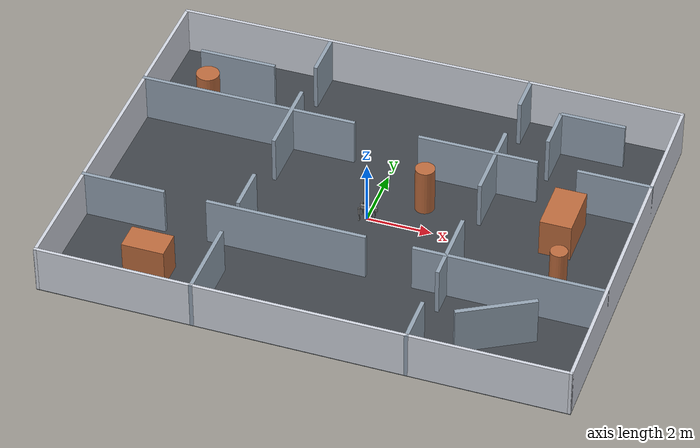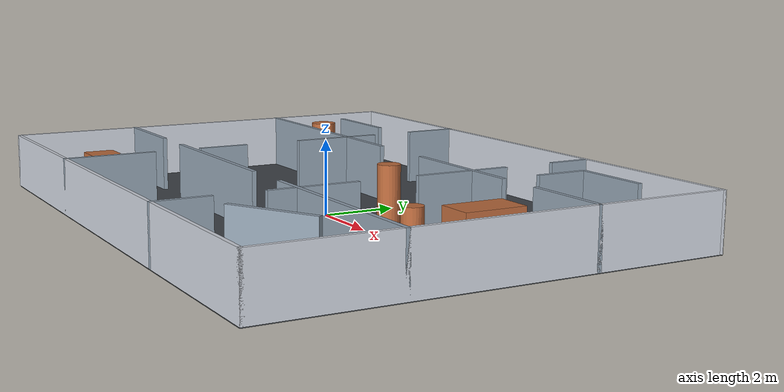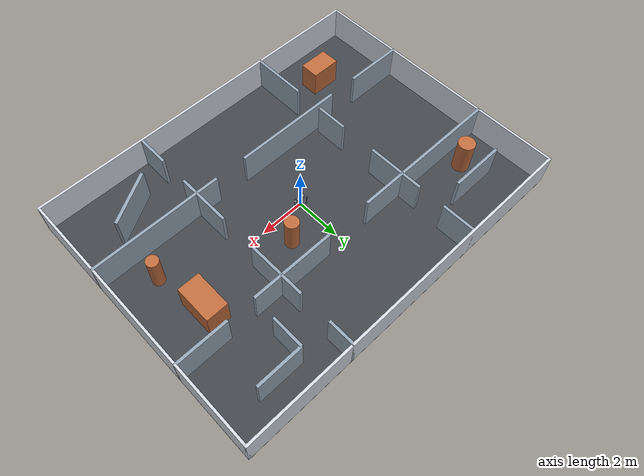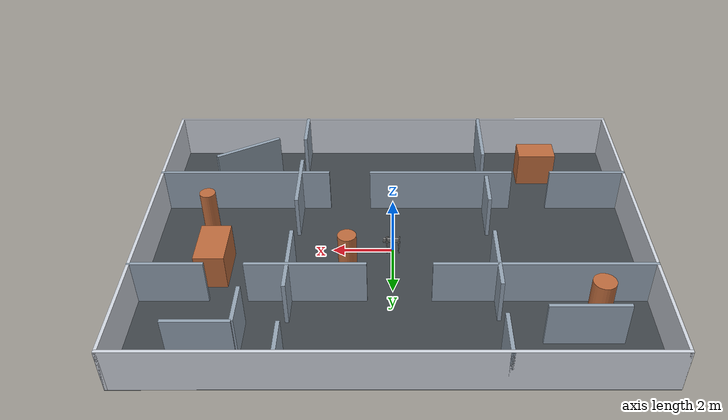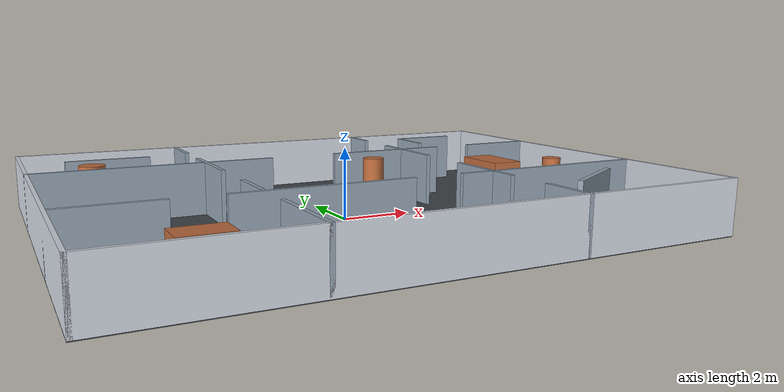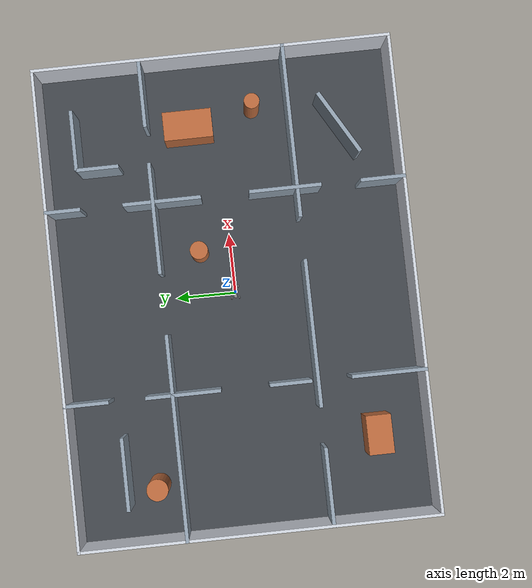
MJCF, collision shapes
<mujoco model="go2_nav2_complex_indoor">
  <!-- Geometry-equivalent snapshot of the world used for this manual SLAM checkpoint. -->
  <include file="/home/bi-agx1/go2_projects/shared/dependencies/unitree_mujoco/unitree_robots/go2/go2.xml" />
  <compiler meshdir="/home/bi-agx1/go2_projects/shared/dependencies/unitree_mujoco/unitree_robots/go2/assets" />

  <statistic center="0 0 0.3" extent="10" />
  <visual>
    <headlight diffuse="0.65 0.65 0.65" ambient="0.35 0.35 0.35" specular="0 0 0" />
    <global azimuth="-90" elevation="-70" />
  </visual>
  <asset>
    <material name="complex_floor" rgba="0.25 0.27 0.29 1" />
    <material name="complex_outer_wall" rgba="0.82 0.84 0.88 1" />
    <material name="complex_partition" rgba="0.58 0.64 0.70 1" />
    <material name="complex_landmark" rgba="0.74 0.42 0.24 1" />
  </asset>
  <worldbody>
    <light name="complex_ceiling_light" pos="0 0 8" dir="0 0 -1" directional="true" />
    <geom name="complex_floor_16x12" type="plane" size="8 6 0.1" material="complex_floor" />
    <geom name="outer_north" type="box" pos="0 5.95 0.75" size="8 0.05 0.75" material="complex_outer_wall" />
    <geom name="outer_south" type="box" pos="0 -5.95 0.75" size="8 0.05 0.75" material="complex_outer_wall" />
    <geom name="outer_east" type="box" pos="7.95 0 0.75" size="0.05 6 0.75" material="complex_outer_wall" />
    <geom name="outer_west" type="box" pos="-7.95 0 0.75" size="0.05 6 0.75" material="complex_outer_wall" />
    <geom name="north_band_west" type="box" pos="-4.60 2.40 0.75" size="3.40 0.06 0.75" material="complex_partition" />
    <geom name="north_band_mid" type="box" pos="2.65 2.40 0.75" size="1.85 0.06 0.75" material="complex_partition" />
    <geom name="north_band_east" type="box" pos="6.85 2.40 0.75" size="1.15 0.06 0.75" material="complex_partition" />
    <geom name="south_band_west" type="box" pos="-6.70 -2.40 0.75" size="1.30 0.06 0.75" material="complex_partition" />
    <geom name="south_band_mid" type="box" pos="-1.65 -2.40 0.75" size="2.45 0.06 0.75" material="complex_partition" />
    <geom name="south_band_east" type="box" pos="5.10 -2.40 0.75" size="2.90 0.06 0.75" material="complex_partition" />
    <geom name="west_spine_south" type="box" pos="-3.20 -4.75 0.75" size="0.06 1.25 0.75" material="complex_partition" />
    <geom name="west_spine_lower" type="box" pos="-3.20 -1.50 0.75" size="0.06 0.70 0.75" material="complex_partition" />
    <geom name="west_spine_upper" type="box" pos="-3.20 2.05 0.75" size="0.06 1.25 0.75" material="complex_partition" />
    <geom name="west_spine_north" type="box" pos="-3.20 5.25 0.75" size="0.06 0.75 0.75" material="complex_partition" />
    <geom name="east_spine_south" type="box" pos="3.20 -5.25 0.75" size="0.06 0.75 0.75" material="complex_partition" />
    <geom name="east_spine_lower" type="box" pos="3.20 -2.00 0.75" size="0.06 1.20 0.75" material="complex_partition" />
    <geom name="east_spine_upper" type="box" pos="3.20 1.60 0.75" size="0.06 0.80 0.75" material="complex_partition" />
    <geom name="east_spine_room_lower" type="box" pos="3.20 2.90 0.75" size="0.06 0.50 0.75" material="complex_partition" />
    <geom name="east_spine_room_upper" type="box" pos="3.20 5.40 0.75" size="0.06 0.60 0.75" material="complex_partition" />
    <geom name="west_north_room_wall" type="box" pos="-5.60 4.20 0.75" size="1.20 0.06 0.75" material="complex_partition" />
    <geom name="east_north_alcove_back" type="box" pos="5.50 4.80 0.75" size="1.00 0.06 0.75" material="complex_partition" />
    <geom name="east_north_alcove_side" type="box" pos="4.50 4.10 0.75" size="0.06 0.70 0.75" material="complex_partition" />
    <geom name="east_south_angled_wall" type="box" pos="5.20 -4.00 0.75" euler="0 0 0.523599" size="1.20 0.07 0.75" material="complex_partition" />
    <geom name="pillar_central" type="cylinder" pos="1.45 1.05 0.75" size="0.30 0.75" material="complex_landmark" />
    <geom name="pillar_north_west" type="cylinder" pos="-6.20 3.20 0.75" size="0.36 0.75" material="complex_landmark" />
    <geom name="pillar_south_east" type="cylinder" pos="6.20 -1.20 0.75" size="0.26 0.75" material="complex_landmark" />
    <geom name="island_south_west" type="box" pos="-5.20 -4.25 0.60" size="0.65 0.42 0.60" material="complex_landmark" />
    <geom name="island_north_east" type="box" pos="5.70 1.00 0.60" size="0.48 0.82 0.60" material="complex_landmark" />
  </worldbody>
</mujoco>

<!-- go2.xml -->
<mujoco model="go2">
  <compiler angle="radian" meshdir="assets" autolimits="true" />

  <option cone="elliptic" impratio="100" />

  <default>
    <default class="go2">
      <geom friction="0.4" margin="0.001" condim="1"/>
      <joint axis="0 1 0" damping="0.1" armature="0.01" frictionloss="0.2"/>
      <motor ctrlrange="-23.7 23.7"/>
      <default class="abduction">
        <joint axis="1 0 0" range="-1.0472 1.0472"/>
      </default>
      <default class="hip">
        <default class="front_hip">
          <joint range="-1.5708 3.4907"/>
        </default>
        <default class="back_hip">
          <joint range="-0.5236 4.5379"/>
        </default>
      </default>
      <default class="knee">
        <joint range="-2.7227 -0.83776"/>
        <motor ctrlrange="-45.43 45.43"/>
      </default>
      <default class="visual">
        <geom type="mesh" contype="0" conaffinity="0" group="2"/>
      </default>
      <default class="collision">
        <geom group="3"/>
        <default class="foot">
          <geom size="0.022" pos="-0.002 0 -0.213" priority="1" condim="6"
            friction="0.4 0.02 0.01"/>
        </default>
      </default>
    </default>
  </default>

  <asset>
    <material name="metal" rgba=".9 .95 .95 1" />
    <material name="black" rgba="0 0 0 1" />
    <material name="white" rgba="1 1 1 1" />
    <material name="gray" rgba="0.671705 0.692426 0.774270 1" />

    <mesh file="base_0.obj" />
    <mesh file="base_1.obj" />
    <mesh file="base_2.obj" />
    <mesh file="base_3.obj" />
    <mesh file="base_4.obj" />
    <mesh file="hip_0.obj" />
    <mesh file="hip_1.obj" />
    <mesh file="thigh_0.obj" />
    <mesh file="thigh_1.obj" />
    <mesh file="thigh_mirror_0.obj" />
    <mesh file="thigh_mirror_1.obj" />
    <mesh file="calf_0.obj" />
    <mesh file="calf_1.obj" />
    <mesh file="calf_mirror_0.obj" />
    <mesh file="calf_mirror_1.obj" />
    <mesh file="foot.obj" />
  </asset>

  <worldbody>
    <body name="base_link" pos="0 0 0.445" childclass="go2">
      <inertial pos="0.021112 0 -0.005366" quat="-0.000543471 0.713435 -0.00173769 0.700719"
        mass="6.921"
        diaginertia="0.107027 0.0980771 0.0244531" />
      <freejoint />
      <geom mesh="base_0" material="black" class="visual" />
      <geom mesh="base_1" material="black" class="visual" />
      <geom mesh="base_2" material="black" class="visual" />
      <geom mesh="base_3" material="white" class="visual" />
      <geom mesh="base_4" material="gray" class="visual" />
      <geom size="0.1881 0.04675 0.057" type="box" class="collision" />
      <geom size="0.05 0.045" pos="0.285 0 0.01" type="cylinder" class="collision" />
      <geom size="0.047" pos="0.293 0 -0.06" class="collision" />
      <site name="imu" pos="-0.02557 0 0.04232" />
      <camera
        name="Gurukul_depth"
        pos="0.33 0 0.08"
        xyaxes="0 -1 0 0.3420201433 0 0.9396926208"
        resolution="106 60"
        focal="0.11041 0.11041"
        sensorsize="0.20955 0.12240"
        principalpixel="0 0"
      />
      <body name="FL_hip" pos="0.1934 0.0465 0">
        <inertial pos="-0.0054 0.00194 -0.000105" quat="0.497014 0.499245 0.505462 0.498237"
          mass="0.678"
          diaginertia="0.00088403 0.000596003 0.000479967" />
        <joint name="FL_hip_joint" class="abduction" />
        <geom mesh="hip_0" material="metal" class="visual" />
        <geom mesh="hip_1" material="gray" class="visual" />
        <geom size="0.046 0.02" pos="0 0.08 0" quat="1 1 0 0" type="cylinder" class="collision" />
        <body name="FL_thigh" pos="0 0.0955 0">
          <inertial pos="-0.00374 -0.0223 -0.0327" quat="0.829533 0.0847635 -0.0200632 0.551623"
            mass="1.152"
            diaginertia="0.00594973 0.00584149 0.000878787" />
          <joint name="FL_thigh_joint" class="front_hip" />
          <geom mesh="thigh_0" material="metal" class="visual" />
          <geom mesh="thigh_1" material="gray" class="visual" />
          <geom size="0.1065 0.01225 0.017" pos="0 0 -0.1065" quat="0.707107 0 0.707107 0"
            type="box" class="collision" />
          <body name="FL_calf" pos="0 0 -0.213">
            <inertial pos="0.00629595 -0.000622121 -0.141417"
              quat="0.710672 0.00154099 -0.00450087 0.703508"
              mass="0.241352" diaginertia="0.0014901 0.00146356 5.31397e-05" />
            <joint name="FL_calf_joint" class="knee" />
            <geom mesh="calf_0" material="gray" class="visual" />
            <geom mesh="calf_1" material="black" class="visual" />
            <geom size="0.012 0.06" pos="0.008 0 -0.06" quat="0.994493 0 -0.104807 0"
              type="cylinder" class="collision" />
            <geom size="0.011 0.0325" pos="0.02 0 -0.148" quat="0.999688 0 0.0249974 0"
              type="cylinder" class="collision" />
            <geom pos="0 0 -0.213" mesh="foot" class="visual" material="black" />
            <geom name="FL" class="foot" />
            <body name="FL_foot" pos="0 0 -0.213" />
          </body>
        </body>
      </body>
      <body name="FR_hip" pos="0.1934 -0.0465 0">
        <inertial pos="-0.0054 -0.00194 -0.000105" quat="0.498237 0.505462 0.499245 0.497014"
          mass="0.678"
          diaginertia="0.00088403 0.000596003 0.000479967" />
        <joint name="FR_hip_joint" class="abduction" />
        <geom mesh="hip_0" material="metal" class="visual" quat="4.63268e-05 1 0 0" />
        <geom mesh="hip_1" material="gray" class="visual" quat="4.63268e-05 1 0 0" />
        <geom size="0.046 0.02" pos="0 -0.08 0" quat="0.707107 0.707107 0 0" type="cylinder"
          class="collision" />
        <body name="FR_thigh" pos="0 -0.0955 0">
          <inertial pos="-0.00374 0.0223 -0.0327" quat="0.551623 -0.0200632 0.0847635 0.829533"
            mass="1.152"
            diaginertia="0.00594973 0.00584149 0.000878787" />
          <joint name="FR_thigh_joint" class="front_hip" />
          <geom mesh="thigh_mirror_0" material="metal" class="visual" />
          <geom mesh="thigh_mirror_1" material="gray" class="visual" />
          <geom size="0.1065 0.01225 0.017" pos="0 0 -0.1065" quat="0.707107 0 0.707107 0"
            type="box" class="collision" />
          <body name="FR_calf" pos="0 0 -0.213">
            <inertial pos="0.00629595 0.000622121 -0.141417"
              quat="0.703508 -0.00450087 0.00154099 0.710672"
              mass="0.241352" diaginertia="0.0014901 0.00146356 5.31397e-05" />
            <joint name="FR_calf_joint" class="knee" />
            <geom mesh="calf_mirror_0" material="gray" class="visual" />
            <geom mesh="calf_mirror_1" material="black" class="visual" />
            <geom size="0.013 0.06" pos="0.01 0 -0.06" quat="0.995004 0 -0.0998334 0"
              type="cylinder" class="collision" />
            <geom size="0.011 0.0325" pos="0.02 0 -0.148" quat="0.999688 0 0.0249974 0"
              type="cylinder" class="collision" />
            <geom pos="0 0 -0.213" mesh="foot" class="visual" material="black" />
            <geom name="FR" class="foot" />
            <body name="FR_foot" pos="0 0 -0.213" />
          </body>
        </body>
      </body>
      <body name="RL_hip" pos="-0.1934 0.0465 0">
        <inertial pos="0.0054 0.00194 -0.000105" quat="0.505462 0.498237 0.497014 0.499245"
          mass="0.678"
          diaginertia="0.00088403 0.000596003 0.000479967" />
        <joint name="RL_hip_joint" class="abduction" />
        <geom mesh="hip_0" material="metal" class="visual" quat="4.63268e-05 0 1 0" />
        <geom mesh="hip_1" material="gray" class="visual" quat="4.63268e-05 0 1 0" />
        <geom size="0.046 0.02" pos="0 0.08 0" quat="0.707107 0.707107 0 0" type="cylinder"
          class="collision" />
        <body name="RL_thigh" pos="0 0.0955 0">
          <inertial pos="-0.00374 -0.0223 -0.0327" quat="0.829533 0.0847635 -0.0200632 0.551623"
            mass="1.152"
            diaginertia="0.00594973 0.00584149 0.000878787" />
          <joint name="RL_thigh_joint" class="back_hip" />
          <geom mesh="thigh_0" material="metal" class="visual" />
          <geom mesh="thigh_1" material="gray" class="visual" />
          <geom size="0.1065 0.01225 0.017" pos="0 0 -0.1065" quat="0.707107 0 0.707107 0"
            type="box" class="collision" />
          <body name="RL_calf" pos="0 0 -0.213">
            <inertial pos="0.00629595 -0.000622121 -0.141417"
              quat="0.710672 0.00154099 -0.00450087 0.703508"
              mass="0.241352" diaginertia="0.0014901 0.00146356 5.31397e-05" />
            <joint name="RL_calf_joint" class="knee" />
            <geom mesh="calf_0" material="gray" class="visual" />
            <geom mesh="calf_1" material="black" class="visual" />
            <geom size="0.013 0.06" pos="0.01 0 -0.06" quat="0.995004 0 -0.0998334 0"
              type="cylinder" class="collision" />
            <geom size="0.011 0.0325" pos="0.02 0 -0.148" quat="0.999688 0 0.0249974 0"
              type="cylinder" class="collision" />
            <geom pos="0 0 -0.213" mesh="foot" class="visual" material="black" />
            <geom name="RL" class="foot" />
            <body name="RL_foot" pos="0 0 -0.213" />
          </body>
        </body>
      </body>
      <body name="RR_hip" pos="-0.1934 -0.0465 0">
        <inertial pos="0.0054 -0.00194 -0.000105" quat="0.499245 0.497014 0.498237 0.505462"
          mass="0.678"
          diaginertia="0.00088403 0.000596003 0.000479967" />
        <joint name="RR_hip_joint" class="abduction" />
        <geom mesh="hip_0" material="metal" class="visual"
          quat="2.14617e-09 4.63268e-05 4.63268e-05 -1" />
        <geom mesh="hip_1" material="gray" class="visual"
          quat="2.14617e-09 4.63268e-05 4.63268e-05 -1" />
        <geom size="0.046 0.02" pos="0 -0.08 0" quat="0.707107 0.707107 0 0" type="cylinder"
          class="collision" />
        <body name="RR_thigh" pos="0 -0.0955 0">
          <inertial pos="-0.00374 0.0223 -0.0327" quat="0.551623 -0.0200632 0.0847635 0.829533"
            mass="1.152"
            diaginertia="0.00594973 0.00584149 0.000878787" />
          <joint name="RR_thigh_joint" class="back_hip" />
          <geom mesh="thigh_mirror_0" material="metal" class="visual" />
          <geom mesh="thigh_mirror_1" material="gray" class="visual" />
          <geom size="0.1065 0.01225 0.017" pos="0 0 -0.1065" quat="0.707107 0 0.707107 0"
            type="box" class="collision" />
          <body name="RR_calf" pos="0 0 -0.213">
            <inertial pos="0.00629595 0.000622121 -0.141417"
              quat="0.703508 -0.00450087 0.00154099 0.710672"
              mass="0.241352" diaginertia="0.0014901 0.00146356 5.31397e-05" />
            <joint name="RR_calf_joint" class="knee" />
            <geom mesh="calf_mirror_0" material="gray" class="visual" />
            <geom mesh="calf_mirror_1" material="black" class="visual" />
            <geom size="0.013 0.06" pos="0.01 0 -0.06" quat="0.995004 0 -0.0998334 0"
              type="cylinder" class="collision" />
            <geom size="0.011 0.0325" pos="0.02 0 -0.148" quat="0.999688 0 0.0249974 0"
              type="cylinder" class="collision" />
            <geom pos="0 0 -0.213" mesh="foot" class="visual" material="black" />
            <geom name="RR" class="foot" />
            <body name="RR_foot" pos="0 0 -0.213" />
          </body>
        </body>
      </body>
    </body>
  </worldbody>

  <actuator>
    <motor class="abduction" name="FR_hip" joint="FR_hip_joint" />
    <motor class="hip" name="FR_thigh" joint="FR_thigh_joint" />
    <motor class="knee" name="FR_calf" joint="FR_calf_joint" />
    <motor class="abduction" name="FL_hip" joint="FL_hip_joint" />
    <motor class="hip" name="FL_thigh" joint="FL_thigh_joint" />
    <motor class="knee" name="FL_calf" joint="FL_calf_joint" />
    <motor class="abduction" name="RR_hip" joint="RR_hip_joint" />
    <motor class="hip" name="RR_thigh" joint="RR_thigh_joint" />
    <motor class="knee" name="RR_calf" joint="RR_calf_joint" />
    <motor class="abduction" name="RL_hip" joint="RL_hip_joint" />
    <motor class="hip" name="RL_thigh" joint="RL_thigh_joint" />
    <motor class="knee" name="RL_calf" joint="RL_calf_joint" />
  </actuator>

  <sensor>
    <jointpos name="FR_hip_pos" joint="FR_hip_joint" />
    <jointpos name="FR_thigh_pos" joint="FR_thigh_joint" />
    <jointpos name="FR_calf_pos" joint="FR_calf_joint" />
    <jointpos name="FL_hip_pos" joint="FL_hip_joint" />
    <jointpos name="FL_thigh_pos" joint="FL_thigh_joint" />
    <jointpos name="FL_calf_pos" joint="FL_calf_joint" />
    <jointpos name="RR_hip_pos" joint="RR_hip_joint" />
    <jointpos name="RR_thigh_pos" joint="RR_thigh_joint" />
    <jointpos name="RR_calf_pos" joint="RR_calf_joint" />
    <jointpos name="RL_hip_pos" joint="RL_hip_joint" />
    <jointpos name="RL_thigh_pos" joint="RL_thigh_joint" />
    <jointpos name="RL_calf_pos" joint="RL_calf_joint" />

    <jointvel name="FR_hip_vel" joint="FR_hip_joint" />
    <jointvel name="FR_thigh_vel" joint="FR_thigh_joint" />
    <jointvel name="FR_calf_vel" joint="FR_calf_joint" />
    <jointvel name="FL_hip_vel" joint="FL_hip_joint" />
    <jointvel name="FL_thigh_vel" joint="FL_thigh_joint" />
    <jointvel name="FL_calf_vel" joint="FL_calf_joint" />
    <jointvel name="RR_hip_vel" joint="RR_hip_joint" />
    <jointvel name="RR_thigh_vel" joint="RR_thigh_joint" />
    <jointvel name="RR_calf_vel" joint="RR_calf_joint" />
    <jointvel name="RL_hip_vel" joint="RL_hip_joint" />
    <jointvel name="RL_thigh_vel" joint="RL_thigh_joint" />
    <jointvel name="RL_calf_vel" joint="RL_calf_joint" />

    <jointactuatorfrc name="FR_hip_torque" joint="FR_hip_joint" noise="0.01" />
    <jointactuatorfrc name="FR_thigh_torque" joint="FR_thigh_joint" noise="0.01" />
    <jointactuatorfrc name="FR_calf_torque" joint="FR_calf_joint" noise="0.01" />
    <jointactuatorfrc name="FL_hip_torque" joint="FL_hip_joint" noise="0.01" />
    <jointactuatorfrc name="FL_thigh_torque" joint="FL_thigh_joint" noise="0.01" />
    <jointactuatorfrc name="FL_calf_torque" joint="FL_calf_joint" noise="0.01" />
    <jointactuatorfrc name="RR_hip_torque" joint="RR_hip_joint" noise="0.01" />
    <jointactuatorfrc name="RR_thigh_torque" joint="RR_thigh_joint" noise="0.01" />
    <jointactuatorfrc name="RR_calf_torque" joint="RR_calf_joint" noise="0.01" />
    <jointactuatorfrc name="RL_hip_torque" joint="RL_hip_joint" noise="0.01" />
    <jointactuatorfrc name="RL_thigh_torque" joint="RL_thigh_joint" noise="0.01" />
    <jointactuatorfrc name="RL_calf_torque" joint="RL_calf_joint" noise="0.01" />

    <framequat name="imu_quat" objtype="site" objname="imu" />
    <gyro name="imu_gyro" site="imu" />
    <accelerometer name="imu_acc" site="imu" />

    <framepos name="frame_pos" objtype="site" objname="imu" />
    <framelinvel name="frame_vel" objtype="site" objname="imu" />
  </sensor>

  <keyframe>
    <key name="home" qpos="0 0 0.27 1 0 0 0 0 0.9 -1.8 0 0.9 -1.8 0 0.9 -1.8 0 0.9 -1.8"
      ctrl="0 0.9 -1.8 0 0.9 -1.8 0 0.9 -1.8 0 0.9 -1.8" />
  </keyframe>
</mujoco>
